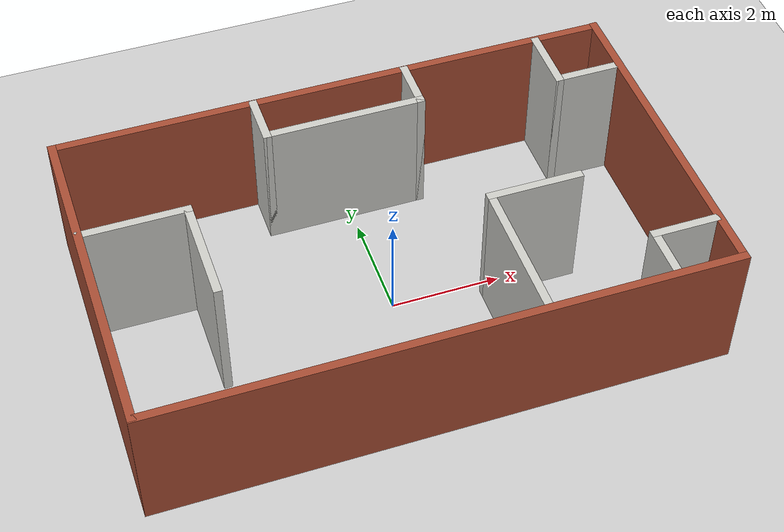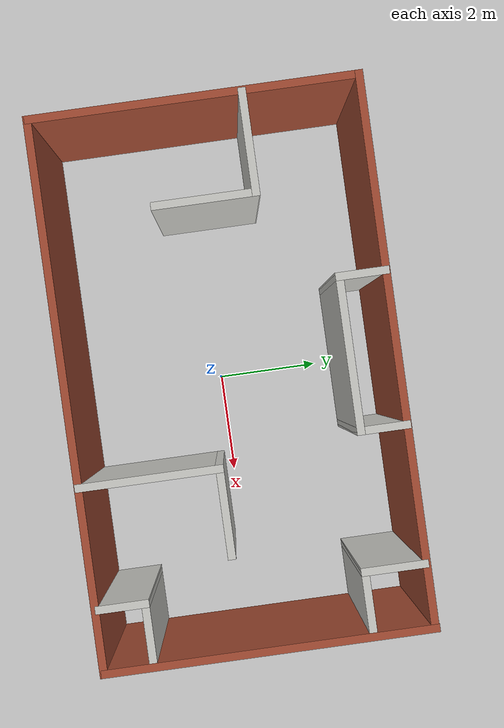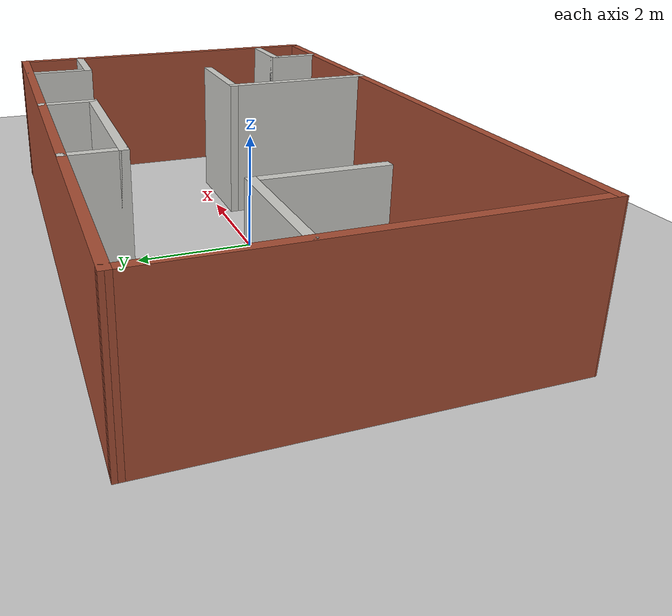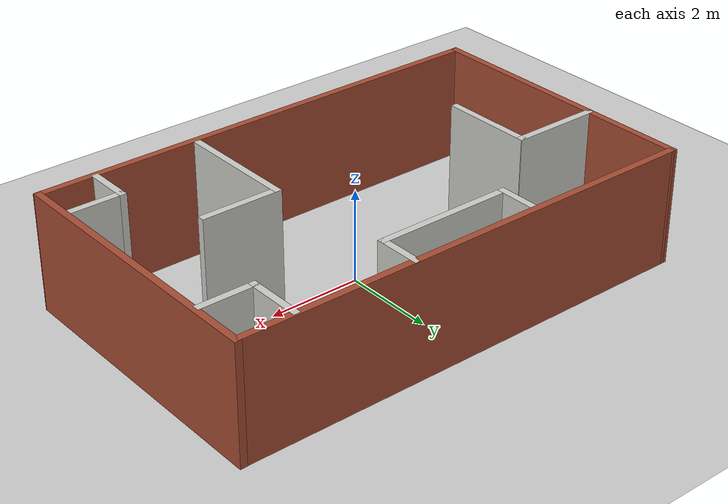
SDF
<sdf version="1.7">
 <world name="default">
  <light name="sun" type="directional">
   <pose>0 0 10 0 -0 0</pose>
   <diffuse>0.8 0.8 0.8 1</diffuse>
   <specular>0.2 0.2 0.2 1</specular>
   <attenuation>
    <range>1000</range>
    <constant>0.9</constant>
    <linear>0.01</linear>
    <quadratic>0.001</quadratic>
   </attenuation>
   <direction>-0.5 0.1 -0.9</direction>
   <spot><inner_angle>0</inner_angle><outer_angle>0</outer_angle><falloff>0</falloff></spot>
  </light>
  <model name="ground_plane">
   <static>1</static>
   <link name="link">
    <collision name="collision">
     <geometry><plane><normal>0 0 1</normal><size>100 100</size></plane></geometry>
     <surface><friction><ode><mu>100</mu><mu2>50</mu2></ode></friction></surface>
    </collision>
    <visual name="visual">
     <cast_shadows>0</cast_shadows>
     <geometry><plane><normal>0 0 1</normal><size>100 100</size></plane></geometry>
     <material>
      <script><uri>file://media/materials/scripts/gazebo.material</uri><name>Gazebo/Grey</name></script>
     </material>
    </visual>
   </link>
  </model>
  <gravity>0 0 -9.8</gravity>
  <magnetic_field>6e-06 2.3e-05 -4.2e-05</magnetic_field>
  <atmosphere type="adiabatic"/>
  <physics type="ode">
   <max_step_size>0.001</max_step_size>
   <real_time_factor>1</real_time_factor>
   <real_time_update_rate>1000</real_time_update_rate>
  </physics>
  <scene><ambient>0.4 0.4 0.4 1</ambient><background>0.7 0.7 0.7 1</background><shadows>1</shadows></scene>
  <audio><device>default</device></audio>
  <spherical_coordinates>
   <surface_model>EARTH_WGS84</surface_model>
   <latitude_deg>0</latitude_deg>
   <longitude_deg>0</longitude_deg>
   <elevation>0</elevation>
   <heading_deg>0</heading_deg>
  </spherical_coordinates>
  <model name="Untitled">
   <pose>-0.019512 0.216378 0 0 -0 0</pose>
   <link name="Wall_10">
    <collision name="Wall_10_Collision">
     <geometry><box><size>6.25 0.15 2.5</size></box></geometry>
     <pose>0 0 1.25 0 -0 0</pose>
    </collision>
    <visual name="Wall_10_Visual">
     <pose>0 0 1.25 0 -0 0</pose>
     <geometry><box><size>6.25 0.15 2.5</size></box></geometry>
     <material>
      <script><uri>file://media/materials/scripts/gazebo.material</uri><name>Gazebo/Bricks</name></script>
      <ambient>1 1 1 1</ambient>
     </material>
     <meta><layer>0</layer></meta>
    </visual>
    <pose>5.11007 0.011529 0 0 -0 1.5708</pose>
   </link>
   <link name="Wall_18">
    <collision name="Wall_18_Collision">
     <geometry><box><size>1.25 0.15 2.5</size></box></geometry>
     <pose>0 0 1.25 0 -0 0</pose>
    </collision>
    <visual name="Wall_18_Visual">
     <pose>0 0 1.25 0 -0 0</pose>
     <geometry><box><size>1.25 0.15 2.5</size></box></geometry>
     <material>
      <script><uri>file://media/materials/scripts/gazebo.material</uri><name>Gazebo/CeilingTiled</name></script>
      <ambient>1 1 1 1</ambient>
     </material>
     <meta><layer>0</layer></meta>
    </visual>
    <pose>3.91564 2.46814 0 0 -0 -1.5708</pose>
   </link>
   <link name="Wall_21">
    <collision name="Wall_21_Collision">
     <geometry><box><size>1.25 0.15 2.5</size></box></geometry>
     <pose>0 0 1.25 0 -0 0</pose>
    </collision>
    <visual name="Wall_21_Visual">
     <pose>0 0 1.25 0 -0 0</pose>
     <geometry><box><size>1.25 0.15 2.5</size></box></geometry>
     <material>
      <script><uri>file://media/materials/scripts/gazebo.material</uri><name>Gazebo/CeilingTiled</name></script>
      <ambient>1 1 1 1</ambient>
     </material>
     <meta><layer>0</layer></meta>
    </visual>
    <pose>4.46564 1.91814 0 0 -0 0</pose>
   </link>
   <link name="Wall_23">
    <collision name="Wall_23_Collision">
     <geometry><box><size>2 0.15 2.5</size></box></geometry>
     <pose>0 0 1.25 0 -0 0</pose>
    </collision>
    <visual name="Wall_23_Visual">
     <pose>0 0 1.25 0 -0 0</pose>
     <geometry><box><size>2 0.15 2.5</size></box></geometry>
     <material>
      <script><uri>file://media/materials/scripts/gazebo.material</uri><name>Gazebo/CeilingTiled</name></script>
      <ambient>1 1 1 1</ambient>
     </material>
     <meta><layer>0</layer></meta>
    </visual>
    <pose>-4.15756 0.899991 0 0 -0 0</pose>
   </link>
   <link name="Wall_24">
    <collision name="Wall_24_Collision">
     <geometry><box><size>2 0.15 2.5</size></box></geometry>
     <pose>0 0 1.25 0 -0 0</pose>
    </collision>
    <visual name="Wall_24_Visual">
     <pose>0 0 1.25 0 -0 0</pose>
     <geometry><box><size>2 0.15 2.5</size></box></geometry>
     <material>
      <script><uri>file://media/materials/scripts/gazebo.material</uri><name>Gazebo/CeilingTiled</name></script>
      <ambient>1 1 1 1</ambient>
     </material>
     <meta><layer>0</layer></meta>
    </visual>
    <pose>-3.23256 -0.042499 0 0 -0 -1.5708</pose>
   </link>
   <link name="Wall_33">
    <collision name="Wall_33_Collision">
     <geometry><box><size>2.75 0.15 2.5</size></box></geometry>
     <pose>0 0 1.25 0 -0 0</pose>
    </collision>
    <visual name="Wall_33_Visual">
     <pose>0 0 1.25 0 -0 0</pose>
     <geometry><box><size>2.75 0.15 2.5</size></box></geometry>
     <material>
      <script><uri>file://media/materials/scripts/gazebo.material</uri><name>Gazebo/CeilingTiled</name></script>
      <ambient>1 1 1 1</ambient>
     </material>
     <meta><layer>0</layer></meta>
    </visual>
    <pose>1.68303 -1.75287 0 0 -0 -1.5708</pose>
   </link>
   <link name="Wall_35">
    <collision name="Wall_35_Collision">
     <geometry><box><size>1.75 0.15 2.5</size></box></geometry>
     <pose>0 0 1.25 0 -0 0</pose>
    </collision>
    <visual name="Wall_35_Visual">
     <pose>0 0 1.25 0 -0 0</pose>
     <geometry><box><size>1.75 0.15 2.5</size></box></geometry>
     <material>
      <script><uri>file://media/materials/scripts/gazebo.material</uri><name>Gazebo/CeilingTiled</name></script>
      <ambient>1 1 1 1</ambient>
     </material>
     <meta><layer>0</layer></meta>
    </visual>
    <pose>2.48303 -0.452866 0 0 -0 0</pose>
   </link>
   <link name="Wall_37">
    <collision name="Wall_37_Collision">
     <geometry><box><size>1 0.15 2.5</size></box></geometry>
     <pose>0 0 1.25 0 -0 0</pose>
    </collision>
    <visual name="Wall_37_Visual">
     <pose>0 0 1.25 0 -0 0</pose>
     <geometry><box><size>1 0.15 2.5</size></box></geometry>
     <material>
      <script><uri>file://media/materials/scripts/gazebo.material</uri><name>Gazebo/CeilingTiled</name></script>
      <ambient>1 1 1 1</ambient>
     </material>
     <meta><layer>0</layer></meta>
    </visual>
    <pose>3.93575 -2.56218 0 0 -0 1.5708</pose>
   </link>
   <link name="Wall_38">
    <collision name="Wall_38_Collision">
     <geometry><box><size>1.25 0.15 2.5</size></box></geometry>
     <pose>0 0 1.25 0 -0 0</pose>
    </collision>
    <visual name="Wall_38_Visual">
     <pose>0 0 1.25 0 -0 0</pose>
     <geometry><box><size>1.25 0.15 2.5</size></box></geometry>
     <material>
      <script><uri>file://media/materials/scripts/gazebo.material</uri><name>Gazebo/CeilingTiled</name></script>
      <ambient>1 1 1 1</ambient>
     </material>
     <meta><layer>0</layer></meta>
    </visual>
    <pose>4.48575 -2.13718 0 0 -0 0</pose>
   </link>
   <link name="Wall_43">
    <collision name="Wall_43_Collision">
     <geometry><box><size>1 0.15 2.5</size></box></geometry>
     <pose>0 0 1.25 0 -0 0</pose>
    </collision>
    <visual name="Wall_43_Visual">
     <pose>0 0 1.25 0 -0 0</pose>
     <geometry><box><size>1 0.15 2.5</size></box></geometry>
     <material>
      <script><uri>file://media/materials/scripts/gazebo.material</uri><name>Gazebo/CeilingTiled</name></script>
      <ambient>1 1 1 1</ambient>
     </material>
     <meta><layer>0</layer></meta>
    </visual>
    <pose>-1.49491 2.6219 0 0 -0 -1.5708</pose>
   </link>
   <link name="Wall_44">
    <collision name="Wall_44_Collision">
     <geometry><box><size>3 0.15 2.5</size></box></geometry>
     <pose>0 0 1.25 0 -0 0</pose>
    </collision>
    <visual name="Wall_44_Visual">
     <pose>0 0 1.25 0 -0 0</pose>
     <geometry><box><size>3 0.15 2.5</size></box></geometry>
     <material>
      <script><uri>file://media/materials/scripts/gazebo.material</uri><name>Gazebo/CeilingTiled</name></script>
      <ambient>1 1 1 1</ambient>
     </material>
     <meta><layer>0</layer></meta>
    </visual>
    <pose>-0.069911 2.1969 0 0 -0 0</pose>
   </link>
   <link name="Wall_45">
    <collision name="Wall_45_Collision">
     <geometry><box><size>1 0.15 2.5</size></box></geometry>
     <pose>0 0 1.25 0 -0 0</pose>
    </collision>
    <visual name="Wall_45_Visual">
     <pose>0 0 1.25 0 -0 0</pose>
     <geometry><box><size>1 0.15 2.5</size></box></geometry>
     <material>
      <script><uri>file://media/materials/scripts/gazebo.material</uri><name>Gazebo/CeilingTiled</name></script>
      <ambient>1 1 1 1</ambient>
     </material>
     <meta><layer>0</layer></meta>
    </visual>
    <pose>1.35509 2.6219 0 0 -0 1.5708</pose>
   </link>
   <link name="Wall_5">
    <collision name="Wall_5_Collision">
     <geometry><box><size>10.3699 0.15 2.5</size></box></geometry>
     <pose>0 0 1.25 0 -0 0</pose>
    </collision>
    <visual name="Wall_5_Visual">
     <pose>0 0 1.25 0 -0 0</pose>
     <geometry><box><size>10.3699 0.15 2.5</size></box></geometry>
     <material>
      <script><uri>file://media/materials/scripts/gazebo.material</uri><name>Gazebo/Bricks</name></script>
      <ambient>1 1 1 1</ambient>
     </material>
     <meta><layer>0</layer></meta>
    </visual>
    <pose>-6.6e-05 3.05662 0 0 -0 -0.000961</pose>
   </link>
   <link name="Wall_7">
    <collision name="Wall_7_Collision">
     <geometry><box><size>6.25 0.15 2.5</size></box></geometry>
     <pose>0 0 1.25 0 -0 0</pose>
    </collision>
    <visual name="Wall_7_Visual">
     <pose>0 0 1.25 0 -0 0</pose>
     <geometry><box><size>6.25 0.15 2.5</size></box></geometry>
     <material>
      <script><uri>file://media/materials/scripts/gazebo.material</uri><name>Gazebo/Bricks</name></script>
      <ambient>1 1 1 1</ambient>
     </material>
     <meta><layer>0</layer></meta>
    </visual>
    <pose>-5.11002 0.011529 0 0 -0 -1.5708</pose>
   </link>
   <link name="Wall_9">
    <collision name="Wall_9_Collision">
     <geometry><box><size>10.3701 0.15 2.5</size></box></geometry>
     <pose>0 0 1.25 0 -0 0</pose>
    </collision>
    <visual name="Wall_9_Visual">
     <pose>0 0 1.25 0 -0 0</pose>
     <geometry><box><size>10.3701 0.15 2.5</size></box></geometry>
     <material>
      <script><uri>file://media/materials/scripts/gazebo.material</uri><name>Gazebo/Bricks</name></script>
      <ambient>1 1 1 1</ambient>
     </material>
     <meta><layer>0</layer></meta>
    </visual>
    <pose>2.9e-05 -3.0616 0 0 -0 0</pose>
   </link>
   <static>1</static>
  </model>
 </world>
</sdf>
